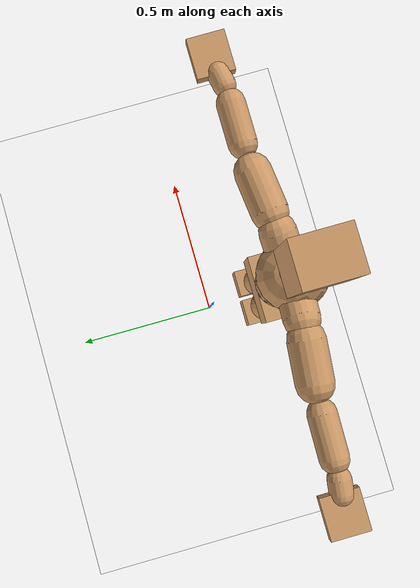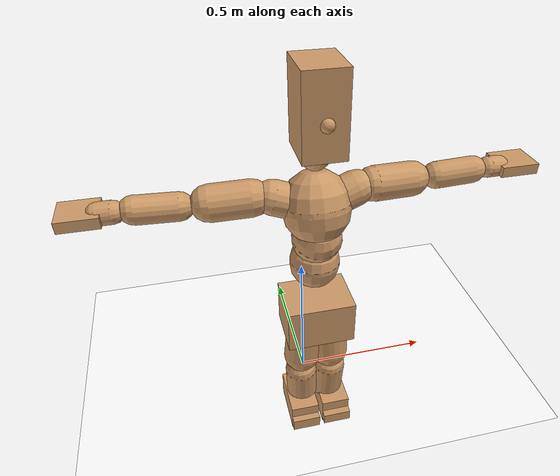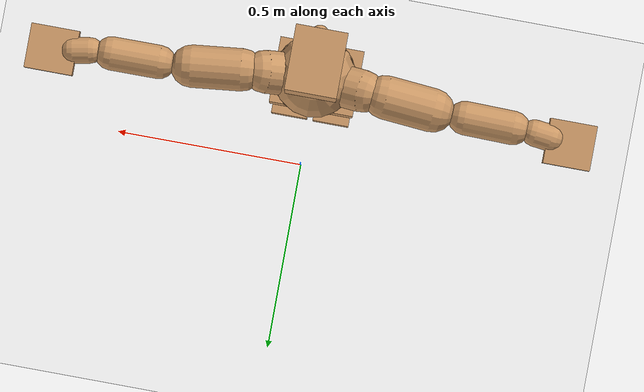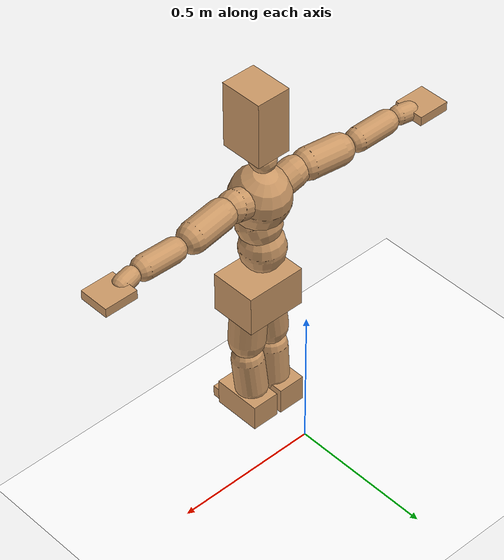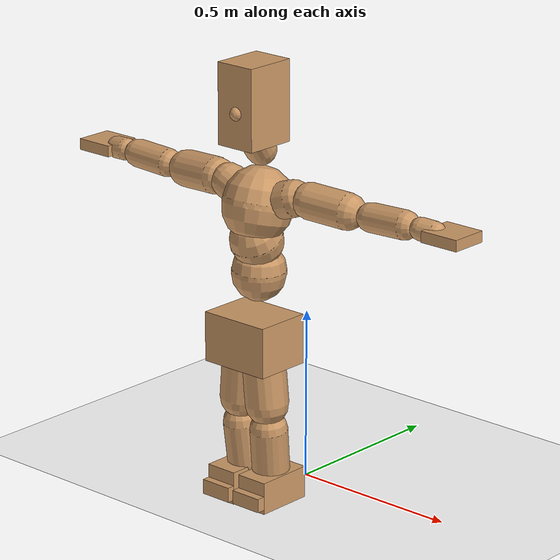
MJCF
<mujoco model="humanoid">
  <option integrator="implicitfast" />

  <visual>
    <global offwidth="1280" offheight="960" />
    <headlight active="1" ambient="0.34 0.34 0.34" diffuse="0.5 0.5 0.5" />
  </visual>

  <default>
    <joint damping="2" stiffness="2" armature="0.01" limited="true" solimplimit="0 .99 .01" />
    <geom condim="1" friction="0.7 0.005 0.0001" solimp=".99 .99 .003" solref="0.015 1" margin="0.001" rgba="0.8 0.6 .4 1" />
    <default class="smplcontact">
      <geom condim="3" friction="1. 0.005 0.0001" solref="0.015 1" solimp="0.98 0.98 0.001" priority="1" />
    </default>
    <default class="stiff_medium">
      <joint stiffness="10" />
    </default>
    <default class="stiff_medium_higher">
      <joint stiffness="50" />
    </default>
    <default class="stiff_high">
      <joint stiffness="100" />
    </default>
  </default>

  <asset>
    <texture type="skybox" builtin="gradient" rgb1="0.99 0.99 0.99" rgb2="0.608 0.828 0.892" width="100" />
    <texture builtin="flat" height="1278" mark="cross" markrgb="1 1 1" name="texgeom" random="0.01" rgb1="0.8 0.6 0.4" rgb2="0.8 0.6 0.4" type="cube" width="127" />
    <texture name="texplane" type="2d" builtin="checker" markrgb="1 1 1" rgb1="0.756 0.772 0.76" rgb2="0.6 0.6 0.6" width="100" height="100" />
    <material name="MatPlane" reflectance="0.5" texture="texplane" texrepeat="1 1" texuniform="true" />
    <material name="geom" texture="texgeom" texuniform="true" />
  </asset>

  <worldbody>
    <light name="tracking_light" pos="0 0 7" dir="0 0 -1" directional="true" cutoff="100" exponent="1" diffuse="1 1 1" specular="0.1 0.1 0.1" mode="trackcom" />
    <camera name="back" pos="0 3 2.4" xyaxes="-1 0 0 0 -1 2" mode="trackcom" />
    <camera name="side" pos="-3 0 2.4" xyaxes="0 -1 0 1 0 2" mode="trackcom" />
    <camera name="front_side" pos="-2.8 -2.8 0.8" xyaxes="0.5 -0.5 0 0.1 0.1 1" mode="trackcom" />
    <geom condim="3" name="floor" pos="0 0 0" rgba="1 1 1 1" size="100 100 .2" type="plane" material="MatPlane" />
    <body name="Pelvis" pos="-0.0018 -0.2233 0.49225" euler="90 0 0">
      <site name="Pelvis" size="0.01" />
      <freejoint name="Pelvis" />
      <geom type="box" pos="-0.0000 -0.0121 -0.0055" size="0.1069 0.0722 0.083" quat="1.0000 0.0000 0.0000 0.0000" density="3165.830099" name="Pelvis" />
      <body name="L_Hip" pos="0.03475 -0.0457 -0.0034">
        <joint name="L_Hip_x" type="hinge" pos="0 0 0" axis="1 0 0" stiffness="3.3281267346938783" range="-160.0 22.92" class="stiff_medium" damping="3.7390012674465325" armature="0.0018669335091027717"/>
        <joint name="L_Hip_y" type="hinge" pos="0 0 0" axis="0 1 0" stiffness="3.37791" range="-70.0 70.0" class="stiff_medium" damping="4.005630916019096" armature="0.004750001934737155"/>
        <joint name="L_Hip_z" type="hinge" pos="0 0 0" axis="0 0 1" stiffness="3.3736477551020405" range="-28.65 90.0" class="stiff_medium" damping="2.5063841398267135" armature="0.001862067978755206"/>
        <geom type="capsule" density="2040.816327" fromto="0.00345 -0.0375 -0.00045 0.0137 -0.1501 -0.0018" size="0.0615" name="L_Hip" />
        <body name="L_Knee" pos="0.01715 -0.1876 -0.00225">
          <joint name="L_Knee_x" type="hinge" pos="0 0 0" axis="1 0 0" range="-5.16 171.89" damping="2.234113816312467" armature="0.0021582150618351197" stiffness="0.7227130408163265"/>
          <joint name="L_Knee_y" type="hinge" pos="0 0 0" axis="0 1 0" range="-4.58 6.88" damping="3.4591258985845013" armature="0.005422024016158549" stiffness="0.6896382205818496"/>
          <joint name="L_Knee_z" type="hinge" pos="0 0 0" axis="0 0 1" range="-6.88 4.58" damping="2.24833895270201" armature="0.0021311895651193315" stiffness="0.7412274770408163"/>
          <geom type="capsule" density="1234.567901" fromto="-0.00135 -0.0398 -0.00435 -0.00545 -0.1592 -0.0175" size="0.0541" name="L_Knee" />
          <body name="L_Ankle" pos="-0.0068 -0.199 -0.02185">
            <joint name="L_Ankle_x" type="hinge" pos="0 0 0" axis="1 0 0" range="-45.84 45.84" class="stiff_medium" damping="3.0200432285450542" armature="0.005067033945711574" stiffness="5.0"/>
            <joint name="L_Ankle_y" type="hinge" pos="0 0 0" axis="0 1 0" range="-74.48 22.92" class="stiff_medium" damping="1.5371232923821347" armature="0.005250551146630429" stiffness="5.0"/>
            <joint name="L_Ankle_z" type="hinge" pos="0 0 0" axis="0 0 1" range="-4.58 4.58" class="stiff_medium" damping="3.4078637028280374" armature="0.006451963898362681" stiffness="5.0"/>
            <geom type="box" pos="0.01165 -0.01195 0.0121" size="0.0483 0.0464 0.085" quat="1.0000 0.0000 0.0000 0.0000" density="449.071558" name="L_Ankle" class="smplcontact" />
            <body name="L_Toe" pos="0.0132 -0.0279 0.05965">
              <joint name="L_Toe_x" type="hinge" pos="0 0 0" axis="1 0 0" range="-91.67 22.92" armature="0.007148590664291319" damping="1.1957082139294117" stiffness="1.0"/>
              <joint name="L_Toe_y" type="hinge" pos="0 0 0" axis="0 1 0" range="-4.58 4.58" armature="0.007990951927082678" damping="1.2641955487251706" stiffness="1.0"/>
              <joint name="L_Toe_z" type="hinge" pos="0 0 0" axis="0 0 1" range="-4.58 4.58" armature="0.009694161060559257" damping="1.3924195531921588" stiffness="1.0"/>
              <geom type="box" pos="-0.0015 0.00275 0.0124" size="0.0478 0.02 0.0496" quat="1.0000 0.0000 0.0000 0.0000" density="423.206892" name="L_Toe" class="smplcontact" />
            </body>
          </body>
        </body>
      </body>
      <body name="R_Hip" pos="-0.03385 -0.04525 -0.00215">
        <joint name="R_Hip_x" type="hinge" pos="0 0 0" axis="1 0 0" stiffness="3.3281267346938783" range="-160.0 22.92" class="stiff_medium" damping="3.7390012674465325" armature="0.0018669335091027717"/>
        <joint name="R_Hip_y" type="hinge" pos="0 0 0" axis="0 1 0" stiffness="3.37791" range="-70.0 70.0" class="stiff_medium" damping="4.005630916019096" armature="0.004750001934737155"/>
        <joint name="R_Hip_z" type="hinge" pos="0 0 0" axis="0 0 1" stiffness="3.3736477551020405" range="-90.0 28.65" class="stiff_medium" damping="2.5063841398267135" armature="0.001862067978755206"/>
        <geom type="capsule" density="2040.816327" fromto="-0.00385 -0.03825 -0.0009 -0.0153 -0.15305 -0.00355" size="0.0606" name="R_Hip" />
        <body name="R_Knee" pos="-0.01915 -0.1913 -0.00445">
          <joint name="R_Knee_x" type="hinge" pos="0 0 0" axis="1 0 0" range="-5.16 171.89" damping="2.234113816312467" armature="0.0021582150618351197" stiffness="0.7227130408163265"/>
          <joint name="R_Knee_y" type="hinge" pos="0 0 0" axis="0 1 0" range="-6.88 4.58" damping="3.4591258985845013" armature="0.005422024016158549" stiffness="0.6896382205818496"/>
          <joint name="R_Knee_z" type="hinge" pos="0 0 0" axis="0 0 1" range="-4.58 6.88" damping="2.24833895270201" armature="0.0021311895651193315" stiffness="0.7412274770408163"/>
          <geom type="capsule" density="1234.567901" fromto="0.0016 -0.03985 -0.00425 0.0063 -0.15935 -0.0169" size="0.0541" name="R_Knee" />
          <body name="R_Ankle" pos="0.0079 -0.1992 -0.02115">
            <joint name="R_Ankle_x" type="hinge" pos="0 0 0" axis="1 0 0" range="-45.84 45.84" class="stiff_medium" damping="3.0200432285450542" armature="0.005067033945711574" stiffness="5.0"/>
            <joint name="R_Ankle_y" type="hinge" pos="0 0 0" axis="0 1 0" range="-22.92 74.48" class="stiff_medium" damping="1.5371232923821347" armature="0.005250551146630429" stiffness="5.0"/>
            <joint name="R_Ankle_z" type="hinge" pos="0 0 0" axis="0 0 1" range="-4.58 4.58" class="stiff_medium" damping="3.4078637028280374" armature="0.006451963898362681" stiffness="5.0"/>
            <geom type="box" pos="-0.0106 -0.0087 0.0128" size="0.0483 0.0478 0.0865" quat="1.0000 0.0000 0.0000 0.0000" density="434.700981" name="R_Ankle" class="smplcontact" />
            <body name="R_Toe" pos="-0.0127 -0.02405 0.06165">
              <joint name="R_Toe_x" type="hinge" pos="0 0 0" axis="1 0 0" range="-91.67 22.92" armature="0.007148590664291319" damping="1.1957082139294117" stiffness="1.0"/>
              <joint name="R_Toe_y" type="hinge" pos="0 0 0" axis="0 1 0" range="-4.58 4.58" armature="0.007990951927082678" damping="1.2641955487251706" stiffness="1.0"/>
              <joint name="R_Toe_z" type="hinge" pos="0 0 0" axis="0 0 1" range="-4.58 4.58" armature="0.009694161060559257" damping="1.3924195531921588" stiffness="1.0"/>
              <geom type="box" pos="0.0021 0.00225 0.01135" size="0.0479 0.0216 0.0493" quat="1.0000 0.0000 0.0000 0.0000" density="407.384095" name="R_Toe" class="smplcontact" />
            </body>
          </body>
        </body>
      </body>
      <body name="Torso" pos="-0.0025 0.109 -0.0267">
        <joint name="Torso_x" type="hinge" pos="0 0 0" axis="1 0 0" range="-25.78 57.3" class="stiff_medium" damping="13.810652204593474" armature="0.009092501018959228" stiffness="9.323146326530612"/>
        <joint name="Torso_y" type="hinge" pos="0 0 0" axis="0 1 0" range="-57.3 57.3" class="stiff_high" damping="14.331171543099826" armature="0.005453647751768047" stiffness="94.1491306122449"/>
        <joint name="Torso_z" type="hinge" pos="0 0 0" axis="0 0 1" range="-34.38 34.38" class="stiff_high" damping="17.29833641675788" armature="0.007846444358372215" stiffness="95.34014042553191"/>
        <geom type="capsule" density="2040.816327" fromto="0.0025 0.0608 0.0005 0.003 0.0743 0.0006" size="0.0769" name="Torso" />
        <body name="Spine" pos="0.0055 0.1352 0.0011">
          <joint name="Spine_x" type="hinge" pos="0 0 0" axis="1 0 0" stiffness="9.198122653061224" range="-25.78 57.3" class="stiff_medium" damping="13.625447932409395" armature="0.008970566343267759"/>
          <joint name="Spine_y" type="hinge" pos="0 0 0" axis="0 1 0" stiffness="9.181372040816328" range="-57.3 57.3" class="stiff_high" damping="5.644321396937274" armature="0.005421705337566875"/>
          <joint name="Spine_z" type="hinge" pos="0 0 0" axis="0 0 1" stiffness="18.1392375" range="-34.38 34.38" class="stiff_high" damping="9.559994320421612" armature="0.00699783575418983"/>
          <geom type="capsule" density="2040.816327" fromto="0.0007 0.0238 0.0114 0.0008 0.0291 0.014" size="0.0755" name="Spine" />
          <body name="Chest" pos="0.0015 0.0529 0.0254">
            <joint name="Chest_x" type="hinge" pos="0 0 0" axis="1 0 0" stiffness="8.90027425531915" range="-25.78 57.3" class="stiff_medium" damping="13.356132991200663" armature="0.008907904701027895"/>
            <joint name="Chest_y" type="hinge" pos="0 0 0" axis="0 1 0" stiffness="8.011889047619047" range="-57.3 57.3" class="stiff_high" damping="5.266225064762502" armature="0.005408588385784328"/>
            <joint name="Chest_z" type="hinge" pos="0 0 0" axis="0 0 1" stiffness="18.1318547826087" range="-34.38 34.38" class="stiff_high" damping="9.302458057933912" armature="0.006628583212401057"/>
            <geom type="capsule" density="2040.816327" fromto="-0.0009 0.0682 -0.0173 -0.001 0.0833 -0.0212" size="0.1002" name="Chest" />
            <body name="Neck" pos="-0.0028 0.2139 -0.0429">
              <joint name="Neck_x" type="hinge" pos="0 0 0" axis="1 0 0" range="-28.65 57.3" class="stiff_medium_higher" damping="10.000000000000002" armature="0.010000000000000005" stiffness="50.0"/>
              <joint name="Neck_y" type="hinge" pos="0 0 0" axis="0 1 0" range="-40.11 40.11" class="stiff_medium_higher" damping="10.0" armature="0.01" stiffness="50.0"/>
              <joint name="Neck_z" type="hinge" pos="0 0 0" axis="0 0 1" range="-40.11 40.11" class="stiff_medium_higher" damping="9.999999999999993" armature="0.009999999999999985" stiffness="50.0"/>
              <geom type="capsule" density="1000" fromto="0.001 0.013 0.0103 0.0041 0.052 0.0411" size="0.0436" name="Neck" />
              <body name="Head" pos="0.0052 0.065 0.0513">
                <joint name="Head_x" type="hinge" pos="0 0 0" axis="1 0 0" range="-28.65 57.3" class="stiff_medium_higher" damping="1.9999999999999996" armature="0.009999999999999995" stiffness="50.0"/>
                <joint name="Head_y" type="hinge" pos="0 0 0" axis="0 1 0" range="-40.11 40.11" class="stiff_medium_higher" damping="2.0" armature="0.01" stiffness="50.0"/>
                <joint name="Head_z" type="hinge" pos="0 0 0" axis="0 0 1" range="-40.11 40.11" class="stiff_medium_higher" damping="1.9999999999999987" armature="0.009999999999999988" stiffness="50.0"/>
                <geom type="box" pos="-0.0042 0.0876 -0.0116" size="0.0606 0.1154 0.076" quat="1.0000 0.0000 0.0000 0.0000" density="1018.069894" name="Head" />
                <geom type="capsule" name="nose" size="0.02 0.01" pos="0 0.07 0.05" quat="1 0 0 0" mass="0" contype="0" conaffinity="0" />
              </body>
            </body>
            <body name="L_Thorax" pos="0.06107 0.0943175 -0.0264275">
              <joint name="L_Thorax_x" type="hinge" pos="0 0 0" axis="1 0 0" range="-10.89 4.58" class="stiff_medium_higher" damping="13.430877912506666" armature="0.006743873105350329" stiffness="33.43562346938776"/>
              <joint name="L_Thorax_y" type="hinge" pos="0 0 0" axis="0 1 0" range="-28.65 17.19" class="stiff_medium_higher" damping="11.843958709758661" armature="0.005279455483598095" stiffness="33.21350051020408"/>
              <joint name="L_Thorax_z" type="hinge" pos="0 0 0" axis="0 0 1" range="-31.51 40.11" class="stiff_medium_higher" damping="11.84290484733603" armature="0.005278125365951002" stiffness="33.215958673469395"/>
              <geom type="capsule" density="1000" fromto="0.014105 0.0047275 -0.001395 0.05642 0.01891 -0.0055025" size="0.0521" name="L_Thorax" />
              <body name="L_Shoulder" pos="0.070525 0.0236375 -0.0068975">
                <joint name="L_Shoulder_x" type="hinge" pos="0 0 0" axis="1 0 0" range="-97.4 97.4" class="stiff_medium" damping="4.200573869623515" armature="0.007293874713182515" stiffness="6.719801632653062"/>
                <joint name="L_Shoulder_y" type="hinge" pos="0 0 0" axis="0 1 0" range="-108.86 80.21" class="stiff_medium" damping="3.5719924695592944" armature="0.005322246430600954" stiffness="6.659223469387755"/>
                <joint name="L_Shoulder_z" type="hinge" pos="0 0 0" axis="0 0 1" range="-97.4 85.94" class="stiff_medium" damping="3.5723414695273763" armature="0.005320431449506394" stiffness="6.662796938775511"/>
                <geom type="capsule" density="1000" fromto="0.0402225 -0.002015 -0.0042625 0.160968 -0.007905 -0.01705" size="0.0517" name="L_Shoulder" />
                <body name="L_Elbow" pos="0.20119 -0.00992 -0.0213125">
                  <joint name="L_Elbow_x" type="hinge" pos="0 0 0" axis="1 0 0" range="-17.19 4.58" damping="3.7512094390015016" armature="0.008221713445805134" stiffness="1.3692106734693876"/>
                  <joint name="L_Elbow_y" type="hinge" pos="0 0 0" axis="0 1 0" range="-180.0 17.19" damping="3.0766314110203554" armature="0.005532912421377141" stiffness="1.368633387755102"/>
                  <joint name="L_Elbow_z" type="hinge" pos="0 0 0" axis="0 0 1" range="-100.84 4.58" damping="3.0750834512185725" armature="0.0055233832548334605" stiffness="1.3696153673469391"/>
                  <geom type="capsule" density="1000" fromto="0.038595 0.001395 -0.000155 0.154535 0.00558 -0.0006975" size="0.0405" name="L_Elbow" />
                  <body name="L_Wrist" pos="0.19313 0.006975 -0.00093">
                    <joint name="L_Wrist_x" type="hinge" pos="0 0 0" axis="1 0 0" range="-180.0 22.92" armature="0.008602907880090452" damping="1.5994571311849326" stiffness="1.486859530612245"/>
                    <joint name="L_Wrist_y" type="hinge" pos="0 0 0" axis="0 1 0" range="-17.19 17.19" armature="0.006335437662014461" damping="1.3682982903238974" stiffness="1.4775934285714285"/>
                    <joint name="L_Wrist_z" type="hinge" pos="0 0 0" axis="0 0 1" range="-22.92 22.92" armature="0.006206199430184729" damping="1.3559819581986121" stiffness="1.4813309591836734"/>
                    <geom type="capsule" density="1000" fromto="0.01302 -0.00124 -0.002325 0.05208 -0.0050375 -0.0093" size="0.0318" name="L_Wrist" class="smplcontact" />
                    <body name="L_Hand" pos="0.0651 -0.006355 -0.0115475">
                      <joint name="L_Hand_x" type="hinge" pos="0 0 0" axis="1 0 0" range="-17.19 17.19" armature="0.009826007646420717" damping="1.7452972154880733" stiffness="1.55"/>
                      <joint name="L_Hand_y" type="hinge" pos="0 0 0" axis="0 1 0" range="-51.57 51.57" armature="0.007895802531703779" damping="1.5645123153328553" stiffness="1.55"/>
                      <joint name="L_Hand_z" type="hinge" pos="0 0 0" axis="0 0 1" range="-91.67 91.67" armature="0.007381279985826346" damping="1.5126786822078797" stiffness="1.55"/>
                      <geom type="box" pos="0.0382075 0.000775 -0.004495" size="0.0585 0.0158 0.0538" quat="1.0000 0.0000 0.0000 0.0000" density="400.552564" name="L_Hand" class="smplcontact" />
                    </body>
                  </body>
                </body>
              </body>
            </body>
            <body name="R_Thorax" pos="-0.063395 0.09207 -0.029915">
              <joint name="R_Thorax_x" type="hinge" pos="0 0 0" axis="1 0 0" range="-10.89 4.58" class="stiff_medium_higher" damping="13.430877912506666" armature="0.006743873105350329" stiffness="33.43562346938776"/>
              <joint name="R_Thorax_y" type="hinge" pos="0 0 0" axis="0 1 0" range="-17.19 28.65" class="stiff_medium_higher" damping="11.843958709758661" armature="0.005279455483598095" stiffness="33.21350051020408"/>
              <joint name="R_Thorax_z" type="hinge" pos="0 0 0" axis="0 0 1" range="-40.11 31.51" class="stiff_medium_higher" damping="11.84290484733603" armature="0.005278125365951002" stiffness="33.215958673469395"/>
              <geom type="capsule" density="1000" fromto="-0.01488 0.0050375 -0.001395 -0.05952 0.02015 -0.0056575" size="0.0511" name="R_Thorax" />
              <body name="R_Shoulder" pos="-0.0744 0.025265 -0.0070525">
                <joint name="R_Shoulder_x" type="hinge" pos="0 0 0" axis="1 0 0" range="-97.4 97.4" class="stiff_medium" damping="4.200573869623515" armature="0.007293874713182515" stiffness="6.719801632653062"/>
                <joint name="R_Shoulder_y" type="hinge" pos="0 0 0" axis="0 1 0" range="-80.21 108.86" class="stiff_medium" damping="3.5719924695592944" armature="0.005322246430600954" stiffness="6.659223469387755"/>
                <joint name="R_Shoulder_z" type="hinge" pos="0 0 0" axis="0 0 1" range="-85.94 97.4" class="stiff_medium" damping="3.5723414695273763" armature="0.005320431449506394" stiffness="6.662796938775511"/>
                <geom type="capsule" density="1000" fromto="-0.0392925 -0.0020925 -0.0033325 -0.157325 -0.0082925 -0.0132525" size="0.0531" name="R_Shoulder" />
                <body name="R_Elbow" pos="-0.196618 -0.0103075 -0.016585">
                  <joint name="R_Elbow_x" type="hinge" pos="0 0 0" axis="1 0 0" range="-17.19 4.58" damping="3.7512094390015016" armature="0.008221713445805134" stiffness="1.3692106734693876"/>
                  <joint name="R_Elbow_y" type="hinge" pos="0 0 0" axis="0 1 0" range="-17.19 180.0" damping="3.0766314110203554" armature="0.005532912421377141" stiffness="1.368633387755102"/>
                  <joint name="R_Elbow_z" type="hinge" pos="0 0 0" axis="0 0 1" range="-4.58 100.84" damping="3.0750834512185725" armature="0.0055233832548334605" stiffness="1.3696153673469391"/>
                  <geom type="capsule" density="1000" fromto="-0.0396025 0.00124 -0.0008525 -0.158255 0.004805 -0.00341" size="0.0408" name="R_Elbow" />
                  <body name="R_Wrist" pos="-0.197858 0.006045 -0.00434">
                    <joint name="R_Wrist_x" type="hinge" pos="0 0 0" axis="1 0 0" range="-180.0 22.92" armature="0.008602907880090452" damping="1.5994571311849326" stiffness="1.486859530612245"/>
                    <joint name="R_Wrist_y" type="hinge" pos="0 0 0" axis="0 1 0" range="-17.19 17.19" armature="0.006335437662014461" damping="1.3682982903238974" stiffness="1.4775934285714285"/>
                    <joint name="R_Wrist_z" type="hinge" pos="0 0 0" axis="0 0 1" range="-22.92 22.92" armature="0.006206199430184729" damping="1.3559819581986121" stiffness="1.4813309591836734"/>
                    <geom type="capsule" density="1000" fromto="-0.0130975 -0.00093 -0.0016275 -0.0524675 -0.0037975 -0.0064325" size="0.0326" name="R_Wrist" class="smplcontact" />
                    <body name="R_Hand" pos="-0.065565 -0.0047275 -0.0079825">
                      <joint name="R_Hand_x" type="hinge" pos="0 0 0" axis="1 0 0" range="-17.19 17.19" armature="0.009826007646420717" damping="1.7452972154880733" stiffness="1.55"/>
                      <joint name="R_Hand_y" type="hinge" pos="0 0 0" axis="0 1 0" range="-51.57 51.57" armature="0.007895802531703779" damping="1.5645123153328553" stiffness="1.55"/>
                      <joint name="R_Hand_z" type="hinge" pos="0 0 0" axis="0 0 1" range="-91.67 91.67" armature="0.007381279985826346" damping="1.5126786822078797" stiffness="1.55"/>
                      <geom type="box" pos="-0.035805 -0.0006975 -0.0061225" size="0.0569 0.0164 0.0546" quat="1.0000 0.0000 0.0000 0.0000" density="403.679611" name="R_Hand" class="smplcontact" />
                    </body>
                  </body>
                </body>
              </body>
            </body>
          </body>
        </body>
      </body>
    </body>
  </worldbody>
  <actuator>
    <general name="L_Hip_x" joint="L_Hip_x" biastype="affine" gainprm="95.62708680036044" biasprm="-71.66280919852072 -59.9062812244898 -0.49853350232620436" ctrllimited="true" ctrlrange="-1 1" forcerange="-119.8125624489796 119.8125624489796" />
    <general name="L_Hip_y" joint="L_Hip_y" biastype="affine" gainprm="74.28412068341248" biasprm="0.0 -60.80238 -0.8011261832038192" ctrllimited="true" ctrlrange="-1 1" forcerange="-121.60476 121.60476" />
    <general name="L_Hip_z" joint="L_Hip_z" biastype="affine" gainprm="62.8763546966517" biasprm="32.51128833240271 -60.72565959183673 -0.5012768279653427" ctrllimited="true" ctrlrange="-1 1" forcerange="-121.45131918367346 121.45131918367346" />
    <general name="L_Knee_x" joint="L_Knee_x" biastype="affine" gainprm="100.49667747567948" biasprm="94.63886492809961 -65.04417367346939 -0.5585284540781168" ctrllimited="true" ctrlrange="-1 1" forcerange="-130.08834734693878 130.08834734693878" />
    <general name="L_Knee_y" joint="L_Knee_y" biastype="affine" gainprm="6.207201182643047" biasprm="1.2457733612634387 -62.06743985236647 -0.8647814746461253" ctrllimited="true" ctrlrange="-1 1" forcerange="-124.13487970473294 124.13487970473294" />
    <general name="L_Knee_z" joint="L_Knee_z" biastype="affine" gainprm="6.671538692002082" biasprm="-1.3389650079934372 -66.71047293367346 -0.5620847381755025" ctrllimited="true" ctrlrange="-1 1" forcerange="-133.42094586734692 133.42094586734692" />
    <general name="L_Ankle_x" joint="L_Ankle_x" biastype="affine" gainprm="36.002651810139035" biasprm="0.0 -45.0 -1.0066810761816847" ctrllimited="true" ctrlrange="-1 1" forcerange="-90.0 90.0" />
    <general name="L_Ankle_y" joint="L_Ankle_y" biastype="affine" gainprm="38.24889055745574" biasprm="-20.24756465238622 -45.0 -1.0247488615880898" ctrllimited="true" ctrlrange="-1 1" forcerange="-90.0 90.0" />
    <general name="L_Ankle_z" joint="L_Ankle_z" biastype="affine" gainprm="3.5971235883603128" biasprm="0.0 -45.0 -1.1359545676093459" ctrllimited="true" ctrlrange="-1 1" forcerange="-90.0 90.0" />
    <general name="L_Toe_x" joint="L_Toe_x" biastype="affine" gainprm="35.99951021748544" biasprm="-21.598449493429825 -36.0 -0.4782832855717647" ctrllimited="true" ctrlrange="-1 1" forcerange="-72.0 72.0" />
    <general name="L_Toe_y" joint="L_Toe_y" biastype="affine" gainprm="2.8776988706882505" biasprm="0.0 -36.0 -0.5056782194900683" ctrllimited="true" ctrlrange="-1 1" forcerange="-72.0 72.0" />
    <general name="L_Toe_z" joint="L_Toe_z" biastype="affine" gainprm="2.8776988706882505" biasprm="0.0 -36.0 -0.5569678212768635" ctrllimited="true" ctrlrange="-1 1" forcerange="-72.0 72.0" />
    <general name="R_Hip_x" joint="R_Hip_x" biastype="affine" gainprm="95.62708680036044" biasprm="-71.66280919852072 -59.9062812244898 -0.49853350232620436" ctrllimited="true" ctrlrange="-1 1" forcerange="-119.8125624489796 119.8125624489796" />
    <general name="R_Hip_y" joint="R_Hip_y" biastype="affine" gainprm="74.28412068341248" biasprm="0.0 -60.80238 -0.8011261832038192" ctrllimited="true" ctrlrange="-1 1" forcerange="-121.60476 121.60476" />
    <general name="R_Hip_z" joint="R_Hip_z" biastype="affine" gainprm="62.8763546966517" biasprm="-32.51128833240271 -60.72565959183673 -0.5012768279653427" ctrllimited="true" ctrlrange="-1 1" forcerange="-121.45131918367346 121.45131918367346" />
    <general name="R_Knee_x" joint="R_Knee_x" biastype="affine" gainprm="100.49667747567948" biasprm="94.63886492809961 -65.04417367346939 -0.5585284540781168" ctrllimited="true" ctrlrange="-1 1" forcerange="-130.08834734693878 130.08834734693878" />
    <general name="R_Knee_y" joint="R_Knee_y" biastype="affine" gainprm="6.207201182643047" biasprm="-1.2457733612634387 -62.06743985236647 -0.8647814746461253" ctrllimited="true" ctrlrange="-1 1" forcerange="-124.13487970473294 124.13487970473294" />
    <general name="R_Knee_z" joint="R_Knee_z" biastype="affine" gainprm="6.671538692002082" biasprm="1.3389650079934372 -66.71047293367346 -0.5620847381755025" ctrllimited="true" ctrlrange="-1 1" forcerange="-133.42094586734692 133.42094586734692" />
    <general name="R_Ankle_x" joint="R_Ankle_x" biastype="affine" gainprm="36.002651810139035" biasprm="0.0 -45.0 -1.0066810761816847" ctrllimited="true" ctrlrange="-1 1" forcerange="-90.0 90.0" />
    <general name="R_Ankle_y" joint="R_Ankle_y" biastype="affine" gainprm="38.24889055745574" biasprm="20.24756465238622 -45.0 -1.0247488615880898" ctrllimited="true" ctrlrange="-1 1" forcerange="-90.0 90.0" />
    <general name="R_Ankle_z" joint="R_Ankle_z" biastype="affine" gainprm="3.5971235883603128" biasprm="0.0 -45.0 -1.1359545676093459" ctrllimited="true" ctrlrange="-1 1" forcerange="-90.0 90.0" />
    <general name="R_Toe_x" joint="R_Toe_x" biastype="affine" gainprm="35.99951021748544" biasprm="-21.598449493429825 -36.0 -0.4782832855717647" ctrllimited="true" ctrlrange="-1 1" forcerange="-72.0 72.0" />
    <general name="R_Toe_y" joint="R_Toe_y" biastype="affine" gainprm="2.8776988706882505" biasprm="0.0 -36.0 -0.5056782194900683" ctrllimited="true" ctrlrange="-1 1" forcerange="-72.0 72.0" />
    <general name="R_Toe_z" joint="R_Toe_z" biastype="affine" gainprm="2.8776988706882505" biasprm="0.0 -36.0 -0.5569678212768635" ctrllimited="true" ctrlrange="-1 1" forcerange="-72.0 72.0" />
    <general name="Torso_x" joint="Torso_x" biastype="affine" gainprm="162.2249324590423" biasprm="61.54706152032995 -223.7555118367347 -3.682840587891593" ctrllimited="true" ctrlrange="-1 1" forcerange="-335.63326775510205 335.63326775510205" />
    <general name="Torso_y" joint="Torso_y" biastype="affine" gainprm="225.974557843997" biasprm="0.0 -225.95791346938776 -2.866234308619965" ctrllimited="true" ctrlrange="-1 1" forcerange="-338.93687020408163 338.93687020408163" />
    <general name="Torso_z" joint="Torso_z" biastype="affine" gainprm="137.29991517080745" biasprm="0.0 -228.8163370212766 -3.459667283351576" ctrllimited="true" ctrlrange="-1 1" forcerange="-343.2245055319149 343.2245055319149" />
    <general name="Spine_x" joint="Spine_x" biastype="affine" gainprm="160.04949122128795" biasprm="60.721713568789056 -220.7549436734694 -3.633452781975839" ctrllimited="true" ctrlrange="-1 1" forcerange="-331.1324155102041 331.1324155102041" />
    <general name="Spine_y" joint="Spine_y" biastype="affine" gainprm="220.36916048323718" biasprm="0.0 -220.35292897959184 -2.822160698468637" ctrllimited="true" ctrlrange="-1 1" forcerange="-330.52939346938774 330.52939346938774" />
    <general name="Spine_z" joint="Spine_z" biastype="affine" gainprm="130.61213036278338" biasprm="0.0 -217.67085 -3.186664773473871" ctrllimited="true" ctrlrange="-1 1" forcerange="-326.506275 326.506275" />
    <general name="Chest_x" joint="Chest_x" biastype="affine" gainprm="154.86685925194476" biasprm="58.7554574340551 -213.6065821276596 -3.561635464320177" ctrllimited="true" ctrlrange="-1 1" forcerange="-320.4098731914894 320.4098731914894" />
    <general name="Chest_y" joint="Chest_y" biastype="affine" gainprm="192.29950114859662" biasprm="0.0 -192.28533714285712 -2.633112532381251" ctrllimited="true" ctrlrange="-1 1" forcerange="-288.4280057142857 288.4280057142857" />
    <general name="Chest_z" joint="Chest_z" biastype="affine" gainprm="130.55897088205305" biasprm="0.0 -217.58225739130438 -3.100819352644637" ctrllimited="true" ctrlrange="-1 1" forcerange="-326.37338608695654 326.37338608695654" />
    <general name="Neck_x" joint="Neck_x" biastype="affine" gainprm="27.00198885760427" biasprm="9.000662952534757 -36.0 -0.8000000000000003" ctrllimited="true" ctrlrange="-1 1" forcerange="-72.0 72.0" />
    <general name="Neck_y" joint="Neck_y" biastype="affine" gainprm="25.20185626709732" biasprm="0.0 -36.0 -0.8" ctrllimited="true" ctrlrange="-1 1" forcerange="-72.0 72.0" />
    <general name="Neck_z" joint="Neck_z" biastype="affine" gainprm="25.20185626709732" biasprm="0.0 -36.0 -0.7999999999999994" ctrllimited="true" ctrlrange="-1 1" forcerange="-72.0 72.0" />
    <general name="Head_x" joint="Head_x" biastype="affine" gainprm="18.001325905069514" biasprm="6.000441968356505 -24.0 -0.7999999999999998" ctrllimited="true" ctrlrange="-1 1" forcerange="-48.0 48.0" />
    <general name="Head_y" joint="Head_y" biastype="affine" gainprm="16.801237511398213" biasprm="0.0 -24.0 -0.8" ctrllimited="true" ctrlrange="-1 1" forcerange="-48.0 48.0" />
    <general name="Head_z" joint="Head_z" biastype="affine" gainprm="16.801237511398213" biasprm="0.0 -24.0 -0.7999999999999995" ctrllimited="true" ctrlrange="-1 1" forcerange="-48.0 48.0" />
    <general name="L_Thorax_x" joint="L_Thorax_x" biastype="affine" gainprm="10.833239714349121" biasprm="-4.4187293211081435 -80.24549632653061 -1.0744702330005333" ctrllimited="true" ctrlrange="-1 1" forcerange="-160.49099265306123 160.49099265306123" />
    <general name="L_Thorax_y" joint="L_Thorax_y" biastype="affine" gainprm="31.887309180393395" biasprm="-7.971827295098349 -79.71240122448978 -0.947516696780693" ctrllimited="true" ctrlrange="-1 1" forcerange="-159.42480244897956 159.42480244897956" />
    <general name="L_Thorax_z" joint="L_Thorax_z" biastype="affine" gainprm="49.8241297438119" biasprm="5.98279134036278 -79.71830081632655 -0.9474323877868823" ctrllimited="true" ctrlrange="-1 1" forcerange="-159.4366016326531 159.4366016326531" />
    <general name="L_Shoulder_x" joint="L_Shoulder_x" biastype="affine" gainprm="54.831990872567324" biasprm="0.0 -32.2550478367347 -1.120153031899604" ctrllimited="true" ctrlrange="-1 1" forcerange="-64.5100956734694 64.5100956734694" />
    <general name="L_Shoulder_y" joint="L_Shoulder_y" biastype="affine" gainprm="52.739356038732126" biasprm="-7.9916567964757785 -31.964272653061222 -0.952531325215812" ctrllimited="true" ctrlrange="-1 1" forcerange="-63.928545306122444 63.928545306122444" />
    <general name="L_Shoulder_z" joint="L_Shoulder_z" biastype="affine" gainprm="51.16846795221352" biasprm="-3.1983781102452724 -31.98142530612245 -0.9526243918739671" ctrllimited="true" ctrlrange="-1 1" forcerange="-63.9628506122449 63.9628506122449" />
    <general name="L_Elbow_x" joint="L_Elbow_x" biastype="affine" gainprm="9.364370274135227" biasprm="-5.424194265358073 -49.291584244897955 -0.6001935102402403" ctrllimited="true" ctrlrange="-1 1" forcerange="-98.58316848979591 98.58316848979591" />
    <general name="L_Elbow_y" joint="L_Elbow_y" biastype="affine" gainprm="84.78555943298619" biasprm="-70.00323003846282 -49.27080195918367 -0.49226102576325687" ctrllimited="true" ctrlrange="-1 1" forcerange="-98.54160391836734 98.54160391836734" />
    <general name="L_Elbow_z" joint="L_Elbow_z" biastype="affine" gainprm="45.359839041363344" biasprm="-41.41849844547179 -49.306153224489805 -0.49201335219497166" ctrllimited="true" ctrlrange="-1 1" forcerange="-98.61230644897961 98.61230644897961" />
    <general name="L_Wrist_x" joint="L_Wrist_x" biastype="affine" gainprm="15.797683800581504" biasprm="-12.228958069166877 -8.92115718367347 -0.639782852473973" ctrllimited="true" ctrlrange="-1 1" forcerange="-17.84231436734694 17.84231436734694" />
    <general name="L_Wrist_y" joint="L_Wrist_y" biastype="affine" gainprm="2.659864086290334" biasprm="0.0 -8.86556057142857 -0.547319316129559" ctrllimited="true" ctrlrange="-1 1" forcerange="-17.73112114285714 17.73112114285714" />
    <general name="L_Wrist_z" joint="L_Wrist_z" biastype="affine" gainprm="3.5554561826046047" biasprm="0.0 -8.88798575510204 -0.5423927832794448" ctrllimited="true" ctrlrange="-1 1" forcerange="-17.77597151020408 17.77597151020408" />
    <general name="L_Hand_x" joint="L_Hand_x" biastype="affine" gainprm="2.7902055152857757" biasprm="0.0 -9.3 -0.6981188861952293" ctrllimited="true" ctrlrange="-1 1" forcerange="-18.6 18.6" />
    <general name="L_Hand_y" joint="L_Hand_y" biastype="affine" gainprm="8.370616545857324" biasprm="0.0 -9.3 -0.6258049261331422" ctrllimited="true" ctrlrange="-1 1" forcerange="-18.6 18.6" />
    <general name="L_Hand_z" joint="L_Hand_z" biastype="affine" gainprm="14.879472925319778" biasprm="0.0 -9.3 -0.6050714728831519" ctrllimited="true" ctrlrange="-1 1" forcerange="-18.6 18.6" />
    <general name="R_Thorax_x" joint="R_Thorax_x" biastype="affine" gainprm="10.833239714349121" biasprm="-4.4187293211081435 -80.24549632653061 -1.0744702330005333" ctrllimited="true" ctrlrange="-1 1" forcerange="-160.49099265306123 160.49099265306123" />
    <general name="R_Thorax_y" joint="R_Thorax_y" biastype="affine" gainprm="31.887309180393395" biasprm="7.971827295098343 -79.71240122448978 -0.947516696780693" ctrllimited="true" ctrlrange="-1 1" forcerange="-159.42480244897956 159.42480244897956" />
    <general name="R_Thorax_z" joint="R_Thorax_z" biastype="affine" gainprm="49.8241297438119" biasprm="-5.98279134036278 -79.71830081632655 -0.9474323877868823" ctrllimited="true" ctrlrange="-1 1" forcerange="-159.4366016326531 159.4366016326531" />
    <general name="R_Shoulder_x" joint="R_Shoulder_x" biastype="affine" gainprm="54.831990872567324" biasprm="0.0 -32.2550478367347 -1.120153031899604" ctrllimited="true" ctrlrange="-1 1" forcerange="-64.5100956734694 64.5100956734694" />
    <general name="R_Shoulder_y" joint="R_Shoulder_y" biastype="affine" gainprm="52.739356038732126" biasprm="7.9916567964757785 -31.964272653061222 -0.952531325215812" ctrllimited="true" ctrlrange="-1 1" forcerange="-63.928545306122444 63.928545306122444" />
    <general name="R_Shoulder_z" joint="R_Shoulder_z" biastype="affine" gainprm="51.16846795221352" biasprm="3.1983781102452653 -31.98142530612245 -0.9526243918739671" ctrllimited="true" ctrlrange="-1 1" forcerange="-63.9628506122449 63.9628506122449" />
    <general name="R_Elbow_x" joint="R_Elbow_x" biastype="affine" gainprm="9.364370274135227" biasprm="-5.424194265358073 -49.291584244897955 -0.6001935102402403" ctrllimited="true" ctrlrange="-1 1" forcerange="-98.58316848979591 98.58316848979591" />
    <general name="R_Elbow_y" joint="R_Elbow_y" biastype="affine" gainprm="84.78555943298619" biasprm="70.00323003846282 -49.27080195918367 -0.49226102576325687" ctrllimited="true" ctrlrange="-1 1" forcerange="-98.54160391836734 98.54160391836734" />
    <general name="R_Elbow_z" joint="R_Elbow_z" biastype="affine" gainprm="45.359839041363344" biasprm="41.41849844547178 -49.306153224489805 -0.49201335219497166" ctrllimited="true" ctrlrange="-1 1" forcerange="-98.61230644897961 98.61230644897961" />
    <general name="R_Wrist_x" joint="R_Wrist_x" biastype="affine" gainprm="15.797683800581504" biasprm="-12.228958069166877 -8.92115718367347 -0.639782852473973" ctrllimited="true" ctrlrange="-1 1" forcerange="-17.84231436734694 17.84231436734694" />
    <general name="R_Wrist_y" joint="R_Wrist_y" biastype="affine" gainprm="2.659864086290334" biasprm="0.0 -8.86556057142857 -0.547319316129559" ctrllimited="true" ctrlrange="-1 1" forcerange="-17.73112114285714 17.73112114285714" />
    <general name="R_Wrist_z" joint="R_Wrist_z" biastype="affine" gainprm="3.5554561826046047" biasprm="0.0 -8.88798575510204 -0.5423927832794448" ctrllimited="true" ctrlrange="-1 1" forcerange="-17.77597151020408 17.77597151020408" />
    <general name="R_Hand_x" joint="R_Hand_x" biastype="affine" gainprm="2.7902055152857757" biasprm="0.0 -9.3 -0.6981188861952293" ctrllimited="true" ctrlrange="-1 1" forcerange="-18.6 18.6" />
    <general name="R_Hand_y" joint="R_Hand_y" biastype="affine" gainprm="8.370616545857324" biasprm="0.0 -9.3 -0.6258049261331422" ctrllimited="true" ctrlrange="-1 1" forcerange="-18.6 18.6" />
    <general name="R_Hand_z" joint="R_Hand_z" biastype="affine" gainprm="14.879472925319778" biasprm="0.0 -9.3 -0.6050714728831519" ctrllimited="true" ctrlrange="-1 1" forcerange="-18.6 18.6" />
  </actuator>
  <contact>
    <exclude body1="Torso" body2="Chest" />
    <exclude body1="Head" body2="Chest" />
    <exclude body1="R_Knee" body2="R_Toe" />
    <exclude body1="R_Knee" body2="L_Ankle" />
    <exclude body1="R_Knee" body2="L_Toe" />
    <exclude body1="L_Knee" body2="L_Toe" />
    <exclude body1="L_Knee" body2="R_Ankle" />
    <exclude body1="L_Knee" body2="R_Toe" />
    <exclude body1="L_Shoulder" body2="Chest" />
    <exclude body1="R_Shoulder" body2="Chest" />
  </contact>
  <sensor>
    <framelinvel name="sensor_Pelvis_framelinvel" objtype="xbody" objname="Pelvis" />
    <framelinvel name="sensor_L_Hip_framelinvel" objtype="xbody" objname="L_Hip" />
    <framelinvel name="sensor_L_Knee_framelinvel" objtype="xbody" objname="L_Knee" />
    <framelinvel name="sensor_L_Ankle_framelinvel" objtype="xbody" objname="L_Ankle" />
    <framelinvel name="sensor_L_Toe_framelinvel" objtype="xbody" objname="L_Toe" />
    <framelinvel name="sensor_R_Hip_framelinvel" objtype="xbody" objname="R_Hip" />
    <framelinvel name="sensor_R_Knee_framelinvel" objtype="xbody" objname="R_Knee" />
    <framelinvel name="sensor_R_Ankle_framelinvel" objtype="xbody" objname="R_Ankle" />
    <framelinvel name="sensor_R_Toe_framelinvel" objtype="xbody" objname="R_Toe" />
    <framelinvel name="sensor_Torso_framelinvel" objtype="xbody" objname="Torso" />
    <framelinvel name="sensor_Spine_framelinvel" objtype="xbody" objname="Spine" />
    <framelinvel name="sensor_Chest_framelinvel" objtype="xbody" objname="Chest" />
    <framelinvel name="sensor_Neck_framelinvel" objtype="xbody" objname="Neck" />
    <framelinvel name="sensor_Head_framelinvel" objtype="xbody" objname="Head" />
    <framelinvel name="sensor_L_Thorax_framelinvel" objtype="xbody" objname="L_Thorax" />
    <framelinvel name="sensor_L_Shoulder_framelinvel" objtype="xbody" objname="L_Shoulder" />
    <framelinvel name="sensor_L_Elbow_framelinvel" objtype="xbody" objname="L_Elbow" />
    <framelinvel name="sensor_L_Wrist_framelinvel" objtype="xbody" objname="L_Wrist" />
    <framelinvel name="sensor_L_Hand_framelinvel" objtype="xbody" objname="L_Hand" />
    <framelinvel name="sensor_R_Thorax_framelinvel" objtype="xbody" objname="R_Thorax" />
    <framelinvel name="sensor_R_Shoulder_framelinvel" objtype="xbody" objname="R_Shoulder" />
    <framelinvel name="sensor_R_Elbow_framelinvel" objtype="xbody" objname="R_Elbow" />
    <framelinvel name="sensor_R_Wrist_framelinvel" objtype="xbody" objname="R_Wrist" />
    <framelinvel name="sensor_R_Hand_framelinvel" objtype="xbody" objname="R_Hand" />
    <frameangvel name="sensor_Pelvis_frameangvel" objtype="xbody" objname="Pelvis" />
    <frameangvel name="sensor_L_Hip_frameangvel" objtype="xbody" objname="L_Hip" />
    <frameangvel name="sensor_L_Knee_frameangvel" objtype="xbody" objname="L_Knee" />
    <frameangvel name="sensor_L_Ankle_frameangvel" objtype="xbody" objname="L_Ankle" />
    <frameangvel name="sensor_L_Toe_frameangvel" objtype="xbody" objname="L_Toe" />
    <frameangvel name="sensor_R_Hip_frameangvel" objtype="xbody" objname="R_Hip" />
    <frameangvel name="sensor_R_Knee_frameangvel" objtype="xbody" objname="R_Knee" />
    <frameangvel name="sensor_R_Ankle_frameangvel" objtype="xbody" objname="R_Ankle" />
    <frameangvel name="sensor_R_Toe_frameangvel" objtype="xbody" objname="R_Toe" />
    <frameangvel name="sensor_Torso_frameangvel" objtype="xbody" objname="Torso" />
    <frameangvel name="sensor_Spine_frameangvel" objtype="xbody" objname="Spine" />
    <frameangvel name="sensor_Chest_frameangvel" objtype="xbody" objname="Chest" />
    <frameangvel name="sensor_Neck_frameangvel" objtype="xbody" objname="Neck" />
    <frameangvel name="sensor_Head_frameangvel" objtype="xbody" objname="Head" />
    <frameangvel name="sensor_L_Thorax_frameangvel" objtype="xbody" objname="L_Thorax" />
    <frameangvel name="sensor_L_Shoulder_frameangvel" objtype="xbody" objname="L_Shoulder" />
    <frameangvel name="sensor_L_Elbow_frameangvel" objtype="xbody" objname="L_Elbow" />
    <frameangvel name="sensor_L_Wrist_frameangvel" objtype="xbody" objname="L_Wrist" />
    <frameangvel name="sensor_L_Hand_frameangvel" objtype="xbody" objname="L_Hand" />
    <frameangvel name="sensor_R_Thorax_frameangvel" objtype="xbody" objname="R_Thorax" />
    <frameangvel name="sensor_R_Shoulder_frameangvel" objtype="xbody" objname="R_Shoulder" />
    <frameangvel name="sensor_R_Elbow_frameangvel" objtype="xbody" objname="R_Elbow" />
    <frameangvel name="sensor_R_Wrist_frameangvel" objtype="xbody" objname="R_Wrist" />
    <frameangvel name="sensor_R_Hand_frameangvel" objtype="xbody" objname="R_Hand" />
    <subtreelinvel name="Chest_subtreelinvel" body="Chest" />
    <gyro name="Pelvis_gyro" site="Pelvis" />
  </sensor>
</mujoco>
